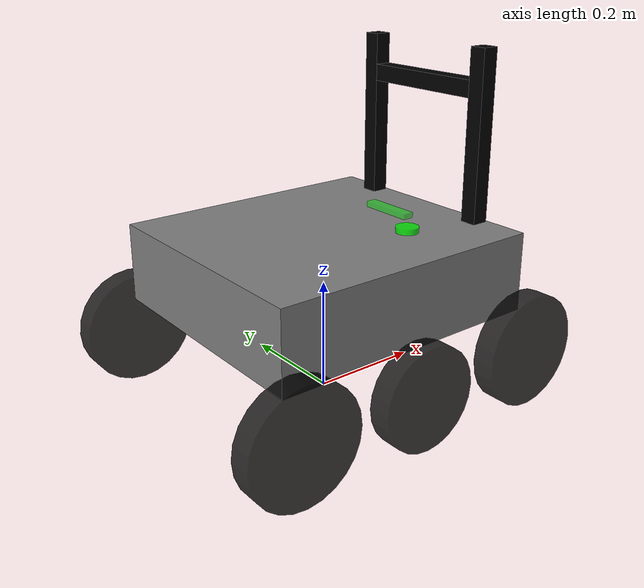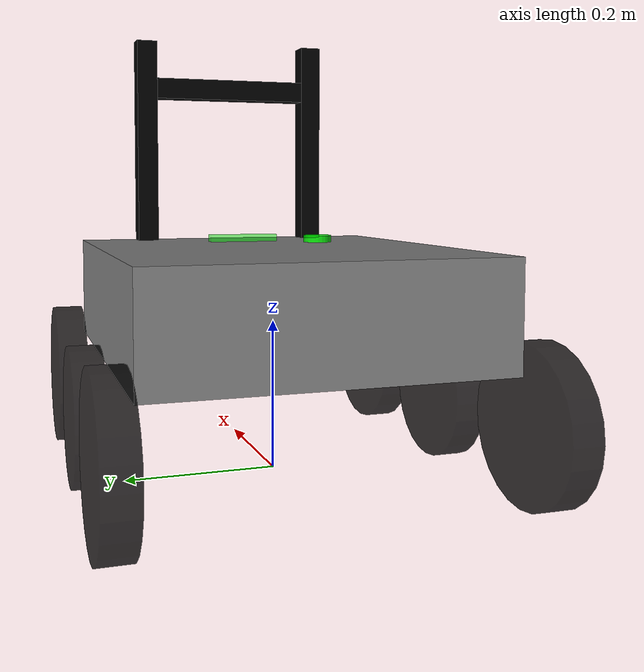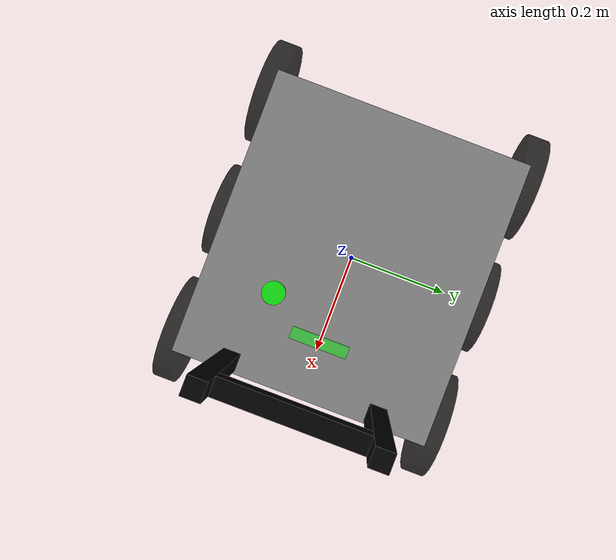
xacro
<?xml version="1.0"?>
<robot xmlns:xacro="http://www.ros.org/wiki/xacro" name="rosbot">
    <!-- 基础部件base_link -->
    <xacro:include filename="$(find bringup)/urdf/rosbot/base.urdf.xacro"/>
    <!-- 传感器部件 -->
    <xacro:include filename="$(find bringup)/urdf/rosbot/sensor/imu.urdf.xacro"/>
    <xacro:include filename="$(find bringup)/urdf/rosbot/sensor/laser.urdf.xacro"/>
    <xacro:include filename="$(find bringup)/urdf/rosbot/sensor/camera.urdf.xacro"/>
    <!-- 执行器部件 -->
    <xacro:include filename="$(find bringup)/urdf/rosbot/actuator/wheel.urdf.xacro"/>
    <xacro:include filename="$(find bringup)/urdf/rosbot/actuator/caster.urdf.xacro"/>
    <!-- 插件 -->
    <xacro:include filename="$(find bringup)/urdf/rosbot/plugins/gazebo_control_plugin.xacro"/>

    <xacro:base_xacro length="0.50" width="0.45" height="0.14"/>
    <!-- 传感器部件 -->
    <xacro:imu_xacro xyz="0.0 0.0 0.02" />
    <xacro:laser_xacro xyz="0.10 -0.10 0.07" />
    <xacro:camera_xacro xyz="0.15 0 0.07" />
    <!-- 执行器部件 -->
    <xacro:wheel_xacro wheel_name="left_front_wheel" xyz="0.24 0.25 -0.13" />
    <xacro:wheel_xacro wheel_name="left_back_wheel" xyz="-0.24 0.25 -0.13" />
    <xacro:wheel_xacro wheel_name="right_front_wheel" xyz="0.24 -0.25 -0.13" />
    <xacro:wheel_xacro wheel_name="right_back_wheel" xyz="-0.24 -0.25 -0.13" />

    <xacro:caster_xacro caster_name="left_caster" xyz="0.0 0.25 -0.14" />
    <xacro:caster_xacro caster_name="right_caster" xyz="0.0 -0.25 -0.14" />

    <xacro:gazebo_control_plugin />
</robot>

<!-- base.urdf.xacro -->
<robot xmlns:xacro="http://www.ros.org/wiki/xacro">
    <xacro:include filename="$(find bringup)/urdf/rosbot/common_inertia.xacro"/>

    <xacro:macro name="base_xacro" params="length width height">
        <link name="base_footprint" />

        <!-- 机器人身体部分 -->
        <link name="base_link">
            <!-- 部件外观描述 -->
            <visual>
                <!-- 沿自己几何中心的偏移和旋转量 -->
                <origin xyz="0.0 0.0 0.0" rpy="0.0 0.0 0.0"/>
                <!-- 几何形状 -->
                <geometry>
                    <!-- 正方体 -->
                    <box size="${length} ${width} ${height}"/>
                </geometry>
                <!-- 材质子标签 -->
                <material name="grey">
                    <color rgba="0.5 0.5 0.5 0.9"/>
                </material>
            </visual>
            <collision>
                <origin xyz="0.0 0.0 0.0" rpy="0.0 0.0 0.0"/>
                <geometry>
                    <box size="${length} ${width} ${height}"/>
                </geometry>
                <!-- 材质子标签 -->
                <material name="grey">
                    <color rgba="0.5 0.5 0.5 0.9"/>
                </material>
            </collision>

            <xacro:box_inertia m="1.0" w="${length}" h="${width}" d="${height}"/>
        </link>

        <link name="handle_left_link">
            <visual>
                <origin xyz="0.0 0.0 0.0" rpy="0.0 0.0 0.0"/>
                <geometry>
                    <box size="0.03 0.03 0.30"/>
                </geometry>
                <material name="black">
                    <color rgba="0.0 0.0 0.0 0.9"/>
                </material>
            </visual>
            <collision>
                <origin xyz="0.0 0.0 0.0" rpy="0.0 0.0 0.0"/>
                <geometry>
                    <box size="0.03 0.03 0.30"/>
                </geometry>
                <material name="black">
                    <color rgba="0.0 0.0 0.0 0.9"/>
                </material>
            </collision>
            <xacro:box_inertia m="0.05" w="0.03" h="0.03" d="0.30"/>
        </link>

        <link name="handle_right_link">
            <visual>
                <origin xyz="0.0 0.0 0.0" rpy="0.0 0.0 0.0"/>
                <geometry>
                    <box size="0.03 0.03 0.30"/>
                </geometry>
                <material name="black">
                    <color rgba="0.0 0.0 0.0 0.9"/>
                </material>
            </visual>
            <collision>
                <origin xyz="0.0 0.0 0.0" rpy="0.0 0.0 0.0"/>
                <geometry>
                    <box size="0.03 0.03 0.30"/>
                </geometry>
                <material name="black">
                    <color rgba="0.0 0.0 0.0 0.9"/>
                </material>
            </collision>
            <xacro:box_inertia m="0.05" w="0.03" h="0.03" d="0.30"/>
        </link>

        <link name="handle_bar_link">
            <visual>
                <origin xyz="0.0 0.0 0.0" rpy="0.0 0.0 1.57079"/>
                <geometry>
                    <box size="0.23 0.03 0.03"/>
                </geometry>
                <material name="black">
                    <color rgba="0.0 0.0 0.0 0.9"/>
                </material>
            </visual>
            <collision>
                <origin xyz="0.0 0.0 0.0" rpy="0.0 0.0 1.57079"/>
                <geometry>
                    <box size="0.23 0.03 0.03"/>
                </geometry>
                <material name="black">
                    <color rgba="0.0 0.0 0.0 0.9"/>
                </material>
            </collision>
            <xacro:box_inertia m="0.05" w="0.03" h="0.23" d="0.03"/>
        </link>

        <joint name="base_joint" type="fixed">
            <parent link="base_footprint"/>
            <child link="base_link"/>
            <origin xyz="0.0 0.0 ${0.23-0.001}" rpy="0.0 0.0 0.0"/>
        </joint>

        <joint name="handle_left_joint" type="fixed">
            <parent link="base_link"/>
            <child link="handle_left_link"/>
            <origin xyz="0.23 0.13 0.22" rpy="0.0 0.0 0.0"/>
        </joint>

        <joint name="handle_right_joint" type="fixed">
            <parent link="base_link"/>
            <child link="handle_right_link"/>
            <origin xyz="0.23 -0.13 0.22" rpy="0.0 0.0 0.0"/>
        </joint>

        <joint name="handle_bar_joint" type="fixed">
            <parent link="base_link"/>
            <child link="handle_bar_link"/>
            <origin xyz="0.23 0.0 0.30" rpy="0.0 0.0 0.0"/>
        </joint>

        <gazebo reference="base_link">
            <material>Gazebo/Yellow</material>
        </gazebo>

        <gazebo reference="handle_left_link">
            <material>Gazebo/Black</material>
        </gazebo>

        <gazebo reference="handle_right_link">
            <material>Gazebo/Black</material>
        </gazebo>

        <gazebo reference="handle_bar_link">
            <material>Gazebo/Black</material>
        </gazebo>
    </xacro:macro>
</robot>

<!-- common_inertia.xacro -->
<robot xmlns:xacro="http://www.ros.org/wiki/xacro">
    <xacro:macro name="box_inertia" params="m w h d">
        <inertial>
            <mass value="${m}"/>
            <inertia ixx="${(m/12) * (h*h + d*d)}" ixy="0.0" ixz="0.0"
            iyy="${(m/12) * (w*w + d*d)}" iyz="0.0" izz="${(m/12) * (w*w + h*h)}"/>
        </inertial>
    </xacro:macro>

    <xacro:macro name="cylinder_inertia" params="m r h">
        <inertial>
            <mass value="${m}"/>
            <inertia ixx="${(m/12) * (3*r*r + h*h)}" ixy="0.0" ixz="0.0"
            iyy="${(m/12) * (3*r*r + h*h)}" iyz="0.0" izz="${(m/2) * (r*r)}"/>
        </inertial>
    </xacro:macro>

    <xacro:macro name="sphere_inertia" params="m r">
        <inertial>
            <mass value="${m}"/>
            <inertia ixx="${(2/5) * m * (r*r)}" ixy="0.0" ixz="0.0"
            iyy="${(2/5) * m * (r*r)}" iyz="0.0" izz="${(2/5) * m * (r*r)}"/>
        </inertial>
    </xacro:macro>

</robot>

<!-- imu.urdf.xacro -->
<robot xmlns:xacro="http://www.ros.org/wiki/xacro">
<xacro:include filename="$(find bringup)/urdf/rosbot/common_inertia.xacro"/>

    <!-- 机器人IMU部件 -->
    <xacro:macro name="imu_xacro" params="xyz">
        <link name="imu_link">
            <visual>
                <origin xyz="0.0 0.0 0.0" rpy="0.0 0.0 0.0"/>
                <geometry>
                    <box size="0.02 0.02 0.02"/>
                </geometry>
                <material name="black">
                    <color rgba="0.0 0.0 0.0 0.5"/>
                </material>
            </visual>
            <collision>
                <origin xyz="0.0 0.0 0.0" rpy="0.0 0.0 0.0"/>
                <geometry>
                    <box size="0.02 0.02 0.02"/>
                </geometry>
                <material name="black">
                    <color rgba="0.0 0.0 0.0 0.5"/>
                </material>
            </collision>

            <xacro:box_inertia m="0.05" w="0.02" h=" 0.02" d="0.02"/>
        </link>

        <joint name="imu_joint" type="fixed">
            <parent link="base_link"/>
            <child link="imu_link"/>
            <origin xyz="${xyz}" rpy="0.0 0.0 0.0"/>
        </joint>

    </xacro:macro>

</robot>

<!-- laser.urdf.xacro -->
<robot xmlns:xacro="http://www.ros.org/wiki/xacro">
<xacro:include filename="$(find bringup)/urdf/rosbot/common_inertia.xacro"/>

    <!-- 机器人雷达部件 -->
    <xacro:macro name="laser_xacro" params="xyz">
        <link name="laser_link">
            <visual>
                <origin xyz="0.0 0.0 0.0" rpy="0.0 0.0 0.0"/>
                <geometry>
                    <cylinder radius="0.02" length="0.02"/>
                </geometry>
                <material name="green">
                    <color rgba="0.0 1.0 0.0 0.8"/>
                </material>
            </visual>
            <collision>
                <origin xyz="0.0 0.0 0.0" rpy="0.0 0.0 0.0"/>
                <geometry>
                    <cylinder radius="0.02" length="0.02"/>
                </geometry>
                <material name="green">
                    <color rgba="0.0 1.0 0.0 0.8"/>
                </material>
            </collision>

            <xacro:cylinder_inertia m="0.10" r="0.02" h="0.02"/>
        </link>

        <joint name="laser_joint" type="fixed">
            <parent link="base_link"/>
            <child link="laser_link"/>
            <origin xyz="${xyz}" rpy="0.0 0.0 0.0"/>
        </joint>

        <gazebo reference="laser_link">
            <material>Gazebo/Black</material>
        </gazebo>
    </xacro:macro>

</robot>

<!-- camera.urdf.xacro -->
<robot xmlns:xacro="http://www.ros.org/wiki/xacro">
<xacro:include filename="$(find bringup)/urdf/rosbot/common_inertia.xacro"/>

    <!-- 机器人camera部件 -->
    <xacro:macro name="camera_xacro" params="xyz">
        <link name="camera_link">
            <visual>
                <origin xyz="0.0 0.0 0.0" rpy="0.0 0.0 0.0"/>
                <geometry>
                    <box size="0.02 0.10 0.02"/>
                </geometry>
                <material name="green">
                    <color rgba="0.0 1.0 0.0 0.5"/>
                </material>
            </visual>
            <collision>
                <origin xyz="0.0 0.0 0.0" rpy="0.0 0.0 0.0"/>
                <geometry>
                    <box size="0.02 0.02 0.02"/>
                </geometry>
                <material name="green">
                    <color rgba="0.0 1.0 0.0 0.5"/>
                </material>
            </collision>

            <xacro:box_inertia m="0.10" w="0.02" h=" 0.10" d="0.02"/>
        </link>

        <joint name="camera_joint" type="fixed">
            <parent link="base_link"/>
            <child link="camera_link"/>
            <origin xyz="${xyz}" rpy="0.0 0.0 0.0"/>
        </joint>

        <gazebo reference="camera_link">
            <material>Gazebo/Black</material>
        </gazebo>
    </xacro:macro>

</robot>

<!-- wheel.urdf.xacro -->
<robot xmlns:xacro="http://www.ros.org/wiki/xacro">
<xacro:include filename="$(find bringup)/urdf/rosbot/common_inertia.xacro"/>

    <xacro:macro name="wheel_xacro" params="wheel_name xyz">
        <link name="${wheel_name}_link">
            <visual>
                <origin xyz="0.0 0.0 0.0" rpy="1.57079 0.0 0.0"/>
                <geometry>
                    <cylinder radius="0.10" length="0.04"/>
                </geometry>
                <material name="black">
                    <color rgba="0.0 0.0 0.0 0.8"/>
                </material>
            </visual>
            <collision>
                <origin xyz="0.0 0.0 0.0" rpy="1.57079 0.0 0.0"/>
                <geometry>
                    <cylinder radius="0.10" length="0.04"/>
                </geometry>
                <material name="black">
                    <color rgba="0.0 0.0 0.0 0.8"/>
                </material>
            </collision>

            <xacro:cylinder_inertia m="0.10" r="0.10" h="0.04"/>
        </link>

        <joint name="${wheel_name}_joint" type="continuous">
            <parent link="base_link"/>
            <child link="${wheel_name}_link"/>
            <origin xyz="${xyz}" rpy="0.0 0.0 0.0"/>
            <axis xyz="0.0 1.0 0.0"/>
        </joint>

        <gazebo reference="${wheel_name}_link">
            <material>Gazebo/Black</material>
        </gazebo>

        <gazebo reference="${wheel_name}_link">
            <mu1 value="20.0"/>
            <mu2 value="20.0"/>
            <kp value="1000000000.0"/>
            <kd value="1.0"/>
        </gazebo>
    </xacro:macro>

</robot>

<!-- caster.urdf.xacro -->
<robot xmlns:xacro="http://www.ros.org/wiki/xacro">
<xacro:include filename="$(find bringup)/urdf/rosbot/common_inertia.xacro"/>

    <xacro:macro name="caster_xacro" params="caster_name xyz">
        <link name="${caster_name}_link">
            <visual>
                <origin xyz="0.0 0.0 0.0" rpy="1.57079 0.0 0.0"/>
                <geometry>
                    <cylinder radius="0.09" length="0.04"/>
                </geometry>
                <material name="black">
                    <color rgba="0.0 0.0 0.0 0.8"/>
                </material>
            </visual>
            <collision>
                <origin xyz="0.0 0.0 0.0" rpy="1.57079 0.0 0.0"/>
                <geometry>
                    <cylinder radius="0.09" length="0.04"/>
                </geometry>
                <material name="black">
                    <color rgba="0.0 0.0 0.0 0.8"/>
                </material>
            </collision>

            <xacro:cylinder_inertia m="0.10" r="0.09" h="0.04"/>
        </link>

        <joint name="${caster_name}_joint" type="fixed">
            <parent link="base_link"/>
            <child link="${caster_name}_link"/>
            <origin xyz="${xyz}" rpy="0.0 0.0 0.0"/>
            <axis xyz="0.0 0.0 0.0"/>
        </joint>

        <gazebo reference="${caster_name}_link">
            <material>Gazebo/Black</material>
        </gazebo>

        <gazebo reference="${caster_name}_link">
            <mu1 value="0.0"/>
            <mu2 value="0.0"/>
            <kp value="1000000000.0"/>
            <kd value="1.0"/>
        </gazebo>
    </xacro:macro>

</robot>
